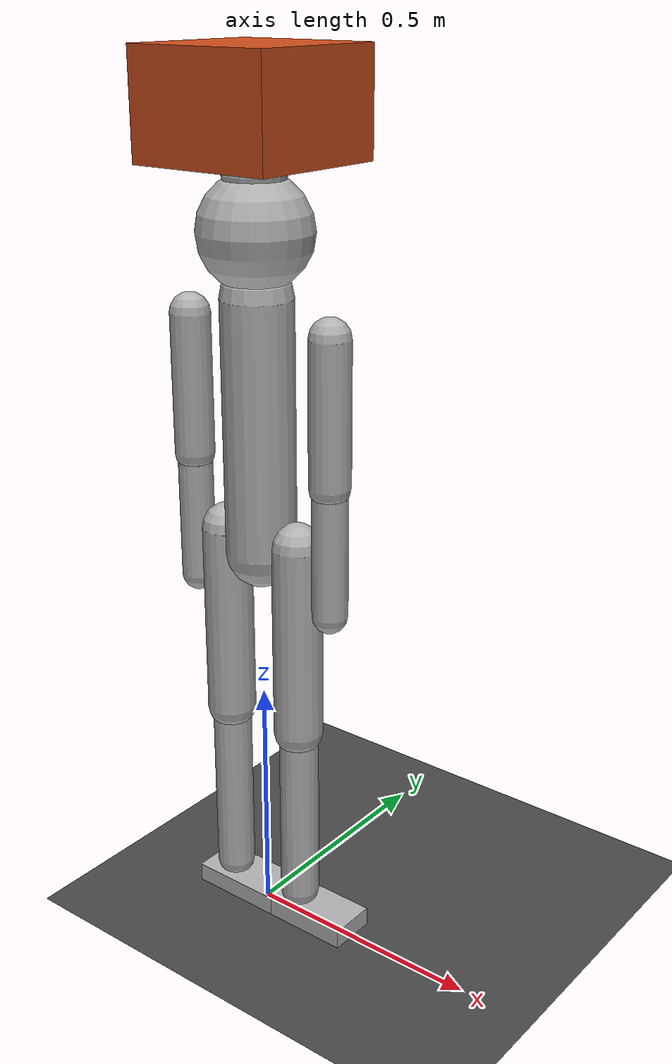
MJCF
<?xml version="1.0" encoding="utf-8"?>
<mujoco model="sapggo_humanoid">

  <compiler angle="radian" coordinate="local" inertiafromgeom="true"/>

  <option
    timestep   = "0.005"
    integrator = "implicitfast"
    gravity    = "0 0 -9.81"
    cone       = "elliptic"
    iterations = "20"
    solver     = "Newton"/>

  <!-- ASSETS -->
  <asset>
    <texture name="ground_tex" type="2d" builtin="checker"
             rgb1="0.22 0.22 0.22" rgb2="0.35 0.35 0.35"
             width="512" height="512"/>
    <material name="ground_mat" texture="ground_tex"
              texrepeat="5 5" reflectance="0.1"/>
    <texture name="sky" type="skybox" builtin="gradient"
             rgb1="0.3 0.5 0.7" rgb2="0.0 0.0 0.0"
             width="512" height="512"/>
    <material name="robot_body" rgba="0.7 0.7 0.7 1"
              specular="0.5" shininess="0.4"/>
    <material name="load_mat" rgba="0.8 0.3 0.1 1"
              specular="0.2" shininess="0.1"/>
  </asset>

  <!-- DEFAULTS -->
  <default>
    <joint limited="true" damping="0.1" stiffness="0" armature="0.01"/>
    <geom  contype="1" conaffinity="1" condim="3"
           friction="0.8 0.005 0.001" density="1000"/>
    <motor ctrllimited="true" ctrlrange="-1 1"/>
  </default>

  <!-- VISUAL -->
  <visual>
    <headlight diffuse="0.6 0.6 0.6" ambient="0.3 0.3 0.3" specular="0.0 0.0 0.0"/>
    <rgba haze="0.15 0.25 0.35 1"/>
  </visual>

  <!-- WORLD -->
  <worldbody>

    <light name="sun" directional="true" castshadow="true"
           pos="1 -1 1.5" dir="-1 1 -1"
           diffuse="0.8 0.8 0.8" specular="0.2 0.2 0.2"/>

    <geom name="floor" type="plane" size="50 50 0.1" material="ground_mat"/>

    <!-- ROOT: floating base (freejoint = 6 DOF) -->
    <body name="root_body" pos="0 0 1.06">
      <freejoint name="root"/>
      <inertial pos="0 0 0" mass="0.01"
                fullinertia="0.0001 0.0001 0.0001 0 0 0"/>

      <!-- TORSO: articulated upper body (2 hinge DOFs) -->
      <body name="torso" pos="0 0 0">
        <joint name="torso_flex" type="hinge" axis="1 0 0"
               range="-0.5 0.5" damping="2.0"/>
        <joint name="torso_lat" type="hinge" axis="0 1 0"
               range="-0.3 0.3" damping="2.0"/>
        <inertial pos="0 0 0" mass="25.0"
                  fullinertia="0.25 0.25 0.12 0 0 0"/>
        <geom type="capsule" size="0.07 0.25" material="robot_body"/>
        <site name="torso_imu" pos="0 0 0" size="0.01"/>

        <!-- NECK -->
        <body name="neck" pos="0 0 0.27">
          <joint name="neck_tilt" type="hinge" axis="1 0 0"
                 range="-0.4 0.4"/>
          <joint name="neck_rot"  type="hinge" axis="0 0 1"
                 range="-0.6 0.6"/>
          <inertial pos="0 0 0" mass="1.5"
                    fullinertia="0.01 0.01 0.008 0 0 0"/>
          <geom type="capsule" size="0.03 0.07" material="robot_body"/>

          <!-- HEAD -->
          <body name="head" pos="0 0 0.10">
            <inertial pos="0 0 0" mass="4.5"
                      fullinertia="0.04 0.04 0.03 0 0 0"/>
            <geom name="head_sphere" type="sphere" size="0.11"
                  material="robot_body"/>
            <!-- Contact surface for the load -->
            <geom name="head_top" type="sphere" size="0.06"
                  pos="0 0 0.10" material="robot_body"
                  friction="0.9 0.005 0.001"/>
            <site name="head_imu" pos="0 0 0.11" size="0.01"/>

          </body> <!-- head -->
        </body> <!-- neck -->
        <!-- LEFT ARM -->
        <body name="upper_arm_L" pos="-0.17 0 0.20">
          <joint name="shoulder_flex_L" type="hinge" axis="1 0 0"
                 range="-1.5 3.14" damping="0.5"/>
          <joint name="shoulder_add_L"  type="hinge" axis="0 0 1"
                 range="-0.5 1.5" damping="0.3"/>
          <joint name="shoulder_rot_L"  type="hinge" axis="0 1 0"
                 range="-1.0 1.0" damping="0.3"/>
          <inertial pos="0 0 -0.14" mass="2.5"
                    fullinertia="0.02 0.02 0.005 0 0 0"/>
          <geom type="capsule" size="0.04 0.14" pos="0 0 -0.14"
                material="robot_body"/>
          <body name="lower_arm_L" pos="0 0 -0.30">
            <joint name="elbow_flex_L" type="hinge" axis="1 0 0"
                   range="-2.3 0.0" damping="0.3"/>
            <inertial pos="0 0 -0.12" mass="1.5"
                      fullinertia="0.01 0.01 0.003 0 0 0"/>
            <geom type="capsule" size="0.035 0.12" pos="0 0 -0.12"
                  material="robot_body"/>
          </body>
        </body>

        <!-- RIGHT ARM -->
        <body name="upper_arm_R" pos="0.17 0 0.20">
          <joint name="shoulder_flex_R" type="hinge" axis="1 0 0"
                 range="-1.5 3.14" damping="0.5"/>
          <joint name="shoulder_add_R"  type="hinge" axis="0 0 1"
                 range="-0.5 1.5" damping="0.3"/>
          <joint name="shoulder_rot_R"  type="hinge" axis="0 1 0"
                 range="-1.0 1.0" damping="0.3"/>
          <inertial pos="0 0 -0.14" mass="2.5"
                    fullinertia="0.02 0.02 0.005 0 0 0"/>
          <geom type="capsule" size="0.04 0.14" pos="0 0 -0.14"
                material="robot_body"/>
          <body name="lower_arm_R" pos="0 0 -0.30">
            <joint name="elbow_flex_R" type="hinge" axis="1 0 0"
                   range="-2.3 0.0" damping="0.3"/>
            <inertial pos="0 0 -0.12" mass="1.5"
                      fullinertia="0.01 0.01 0.003 0 0 0"/>
            <geom type="capsule" size="0.035 0.12" pos="0 0 -0.12"
                  material="robot_body"/>
          </body>
        </body>

      </body> <!-- torso -->

      <!-- LEFT LEG -->
      <body name="upper_leg_L" pos="-0.09 0 -0.22">
        <joint name="hip_flex_L" type="hinge" axis="1 0 0"
               range="-0.7 1.2" damping="0.5"/>
        <joint name="hip_add_L"  type="hinge" axis="0 0 1"
               range="-0.5 0.5" damping="0.3"/>
        <joint name="hip_rot_L"  type="hinge" axis="0 1 0"
               range="-0.5 0.5" damping="0.3"/>
        <inertial pos="0 0 -0.2" mass="7.0"
                  fullinertia="0.08 0.08 0.02 0 0 0"/>
        <geom type="capsule" size="0.05 0.2" pos="0 0 -0.2"
              material="robot_body"/>
        <body name="lower_leg_L" pos="0 0 -0.42">
          <joint name="knee_L" type="hinge" axis="1 0 0"
                 range="-1.8 0.0" damping="0.5"/>
          <inertial pos="0 0 -0.18" mass="4.5"
                    fullinertia="0.05 0.05 0.01 0 0 0"/>
          <geom type="capsule" size="0.04 0.18" pos="0 0 -0.18"
                material="robot_body"/>
          <body name="foot_L" pos="0 0 -0.38">
            <joint name="ankle_flex_L" type="hinge" axis="1 0 0"
                   range="-0.7 0.5" damping="0.3"/>
            <joint name="ankle_inv_L"  type="hinge" axis="0 0 1"
                   range="-0.4 0.4" damping="0.2"/>
            <inertial pos="0.04 0 -0.02" mass="1.5"
                      fullinertia="0.003 0.012 0.01 0 0 0"/>
            <geom name="foot_L" type="box"
                  size="0.10 0.05 0.02" pos="0.04 0 -0.02"
                  material="robot_body" condim="6"/>
            <site name="foot_L_contact" pos="0.04 0 -0.04"/>
          </body>
        </body>
      </body>

      <!-- RIGHT LEG (mirror) -->
      <body name="upper_leg_R" pos="0.09 0 -0.22">
        <joint name="hip_flex_R" type="hinge" axis="1 0 0"
               range="-0.7 1.2" damping="0.5"/>
        <joint name="hip_add_R"  type="hinge" axis="0 0 1"
               range="-0.5 0.5" damping="0.3"/>
        <joint name="hip_rot_R"  type="hinge" axis="0 1 0"
               range="-0.5 0.5" damping="0.3"/>
        <inertial pos="0 0 -0.2" mass="7.0"
                  fullinertia="0.08 0.08 0.02 0 0 0"/>
        <geom type="capsule" size="0.05 0.2" pos="0 0 -0.2"
              material="robot_body"/>
        <body name="lower_leg_R" pos="0 0 -0.42">
          <joint name="knee_R" type="hinge" axis="1 0 0"
                 range="-1.8 0.0" damping="0.5"/>
          <inertial pos="0 0 -0.18" mass="4.5"
                    fullinertia="0.05 0.05 0.01 0 0 0"/>
          <geom type="capsule" size="0.04 0.18" pos="0 0 -0.18"
                material="robot_body"/>
          <body name="foot_R" pos="0 0 -0.38">
            <joint name="ankle_flex_R" type="hinge" axis="1 0 0"
                   range="-0.7 0.5" damping="0.3"/>
            <joint name="ankle_inv_R"  type="hinge" axis="0 0 1"
                   range="-0.4 0.4" damping="0.2"/>
            <inertial pos="0.04 0 -0.02" mass="1.5"
                      fullinertia="0.003 0.012 0.01 0 0 0"/>
            <geom name="foot_R" type="box"
                  size="0.10 0.05 0.02" pos="0.04 0 -0.02"
                  material="robot_body" condim="6"/>
            <site name="foot_R_contact" pos="0.04 0 -0.04"/>
          </body>
        </body>
      </body>

    </body> <!-- root_body -->

    <!-- LOAD: free body placed above the head at init (top-level for MuJoCo 3.x) -->
    <body name="load" pos="0 0 1.65">
      <freejoint name="load_joint"/>
      <inertial pos="0 0 0" mass="5.0"
                fullinertia="0.015 0.015 0.012 0 0 0"/>
      <geom name="load_geom" type="box"
            size="0.15 0.15 0.10"
            material="load_mat"
            friction="0.8 0.005 0.001"
            condim="6"/>
      <site name="load_imu" pos="0 0 0" size="0.01"/>
    </body>

  </worldbody>

  <!-- SENSORS -->
  <sensor>
    <framequat     name="torso_quat"  objtype="body" objname="torso"/>
    <gyro          name="torso_gyro"  site="torso_imu"/>
    <accelerometer name="torso_acc"   site="torso_imu"/>
    <framequat     name="head_quat"   objtype="body" objname="head"/>
    <framepos      name="load_pos"    objtype="body" objname="load"/>
    <framequat     name="load_quat"   objtype="body" objname="load"/>
    <gyro          name="load_gyro"   site="load_imu"/>
    <accelerometer name="load_acc"    site="load_imu"/>
    <force         name="foot_L_force" site="foot_L_contact"/>
    <force         name="foot_R_force" site="foot_R_contact"/>
  </sensor>

  <!-- ACTUATORS -->
  <actuator>
    <motor name="hip_flex_L"   joint="hip_flex_L"   gear="150"/>
    <motor name="hip_add_L"    joint="hip_add_L"    gear="150"/>
    <motor name="hip_rot_L"    joint="hip_rot_L"    gear="150"/>
    <motor name="knee_L"       joint="knee_L"       gear="200"/>
    <motor name="ankle_flex_L" joint="ankle_flex_L" gear="80"/>
    <motor name="ankle_inv_L"  joint="ankle_inv_L"  gear="80"/>
    <motor name="hip_flex_R"   joint="hip_flex_R"   gear="150"/>
    <motor name="hip_add_R"    joint="hip_add_R"    gear="150"/>
    <motor name="hip_rot_R"    joint="hip_rot_R"    gear="150"/>
    <motor name="knee_R"       joint="knee_R"       gear="200"/>
    <motor name="ankle_flex_R" joint="ankle_flex_R" gear="80"/>
    <motor name="ankle_inv_R"  joint="ankle_inv_R"  gear="80"/>
    <motor name="torso_flex"   joint="torso_flex"   gear="120"/>
    <motor name="torso_lat"    joint="torso_lat"    gear="120"/>
    <motor name="neck_tilt"    joint="neck_tilt"    gear="40"/>
    <motor name="neck_rot"     joint="neck_rot"     gear="40"/>
    <motor name="shoulder_flex_L" joint="shoulder_flex_L" gear="80"/>
    <motor name="shoulder_add_L"  joint="shoulder_add_L"  gear="80"/>
    <motor name="shoulder_rot_L"  joint="shoulder_rot_L"  gear="60"/>
    <motor name="elbow_flex_L"    joint="elbow_flex_L"    gear="60"/>
    <motor name="shoulder_flex_R" joint="shoulder_flex_R" gear="80"/>
    <motor name="shoulder_add_R"  joint="shoulder_add_R"  gear="80"/>
    <motor name="shoulder_rot_R"  joint="shoulder_rot_R"  gear="60"/>
    <motor name="elbow_flex_R"    joint="elbow_flex_R"    gear="60"/>
  </actuator>

</mujoco>
